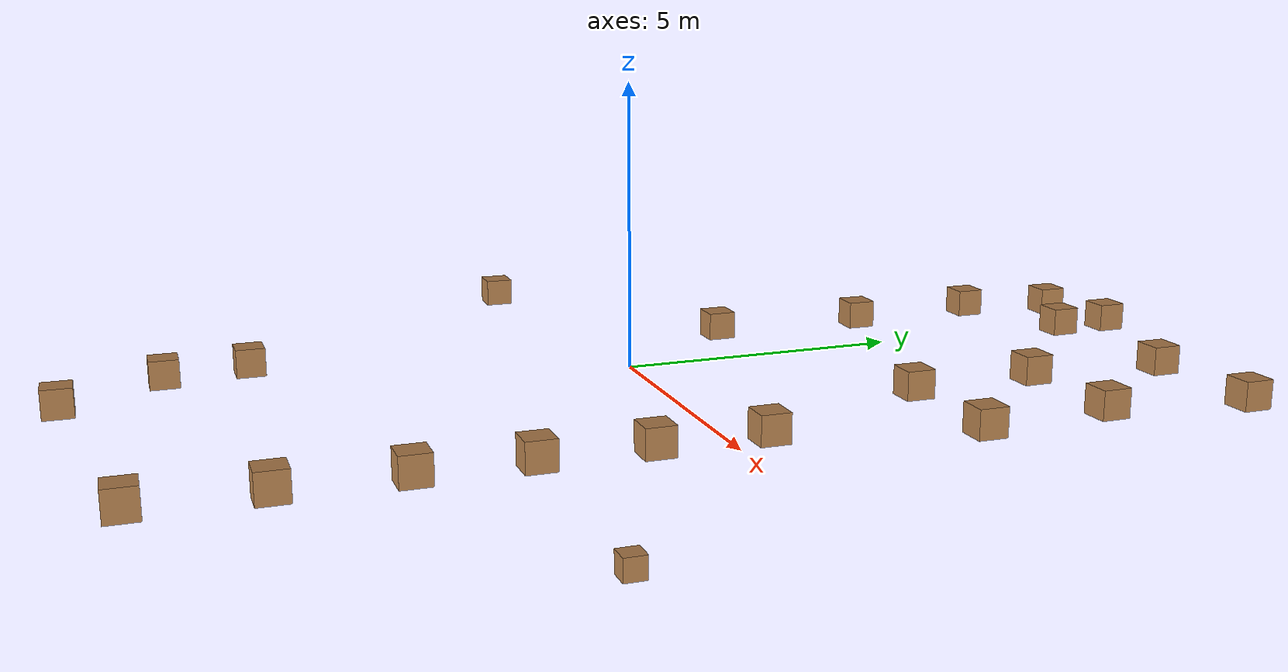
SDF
<sdf version="1.8">
 <world name="default">
  <frame name="map"/>
  <gravity>0 0 -9.8</gravity>
  <physics default="0" name="default_physics" type="ode">
   <max_step_size>0.001</max_step_size>
   <real_time_factor>1</real_time_factor>
   <real_time_update_rate>1000</real_time_update_rate>
  </physics>
  <model name="obs_01">
   <pose>-5.795143 -0.956635 0.25 0 0 0</pose>
   <static>true</static>
   <link name="link">
    <collision name="c"><geometry><box><size>0.5 0.5 0.5</size></box></geometry></collision>
    <visual name="v">
     <geometry><box><size>0.5 0.5 0.5</size></box></geometry>
     <material><ambient>0.7 0.5 0.3 1</ambient><diffuse>0.7 0.5 0.3 1</diffuse></material>
    </visual>
   </link>
  </model>
  <model name="obs_02">
   <pose>4.73156 0.57943 0.25 0 0 0</pose>
   <static>true</static>
   <link name="link">
    <collision name="c"><geometry><box><size>0.5 0.5 0.5</size></box></geometry></collision>
    <visual name="v">
     <geometry><box><size>0.5 0.5 0.5</size></box></geometry>
     <material><ambient>0.7 0.5 0.3 1</ambient><diffuse>0.7 0.5 0.3 1</diffuse></material>
    </visual>
   </link>
  </model>
  <model name="obs_03">
   <pose>4.73156 -4.827049 0.25 0 0 0</pose>
   <static>true</static>
   <link name="link">
    <collision name="c"><geometry><box><size>0.5 0.5 0.5</size></box></geometry></collision>
    <visual name="v">
     <geometry><box><size>0.5 0.5 0.5</size></box></geometry>
     <material><ambient>0.7 0.5 0.3 1</ambient><diffuse>0.7 0.5 0.3 1</diffuse></material>
    </visual>
   </link>
  </model>
  <model name="obs_04">
   <pose>4.73156 -8.6651 0.25 0 0 0</pose>
   <static>true</static>
   <link name="link">
    <collision name="c"><geometry><box><size>0.5 0.5 0.5</size></box></geometry></collision>
    <visual name="v">
     <geometry><box><size>0.5 0.5 0.5</size></box></geometry>
     <material><ambient>0.7 0.5 0.3 1</ambient><diffuse>0.7 0.5 0.3 1</diffuse></material>
    </visual>
   </link>
  </model>
  <model name="obs_05">
   <pose>4.73156 -1.242668 0.25 0 0 0</pose>
   <static>true</static>
   <link name="link">
    <collision name="c"><geometry><box><size>0.5 0.5 0.5</size></box></geometry></collision>
    <visual name="v">
     <geometry><box><size>0.5 0.5 0.5</size></box></geometry>
     <material><ambient>0.7 0.5 0.3 1</ambient><diffuse>0.7 0.5 0.3 1</diffuse></material>
    </visual>
   </link>
  </model>
  <model name="obs_06">
   <pose>4.73156 -3.038551 0.25 0 0 0</pose>
   <static>true</static>
   <link name="link">
    <collision name="c"><geometry><box><size>0.5 0.5 0.5</size></box></geometry></collision>
    <visual name="v">
     <geometry><box><size>0.5 0.5 0.5</size></box></geometry>
     <material><ambient>0.7 0.5 0.3 1</ambient><diffuse>0.7 0.5 0.3 1</diffuse></material>
    </visual>
   </link>
  </model>
  <model name="obs_07">
   <pose>4.73156 -6.750542 0.25 0 0 0</pose>
   <static>true</static>
   <link name="link">
    <collision name="c"><geometry><box><size>0.5 0.5 0.5</size></box></geometry></collision>
    <visual name="v">
     <geometry><box><size>0.5 0.5 0.5</size></box></geometry>
     <material><ambient>0.7 0.5 0.3 1</ambient><diffuse>0.7 0.5 0.3 1</diffuse></material>
    </visual>
   </link>
  </model>
  <model name="obs_08">
   <pose>0 0 -3.75 0 0 0</pose>
   <static>true</static>
   <link name="link">
    <collision name="c"><geometry><box><size>0.5 0.5 0.5</size></box></geometry></collision>
    <visual name="v">
     <geometry><box><size>0.5 0.5 0.5</size></box></geometry>
     <material><ambient>0.7 0.5 0.3 1</ambient><diffuse>0.7 0.5 0.3 1</diffuse></material>
    </visual>
   </link>
  </model>
  <model name="obs_09">
   <pose>0.433449 9.631706 0.25 0 0 -1.563161</pose>
   <static>true</static>
   <link name="link">
    <collision name="c"><geometry><box><size>0.5 0.5 0.5</size></box></geometry></collision>
    <visual name="v">
     <geometry><box><size>0.5 0.5 0.5</size></box></geometry>
     <material><ambient>0.7 0.5 0.3 1</ambient><diffuse>0.7 0.5 0.3 1</diffuse></material>
    </visual>
   </link>
  </model>
  <model name="obs_10">
   <pose>-1.8321 -6.3752 0.25 0 0 -1.563161</pose>
   <static>true</static>
   <link name="link">
    <collision name="c"><geometry><box><size>0.5 0.5 0.5</size></box></geometry></collision>
    <visual name="v">
     <geometry><box><size>0.5 0.5 0.5</size></box></geometry>
     <material><ambient>0.7 0.5 0.3 1</ambient><diffuse>0.7 0.5 0.3 1</diffuse></material>
    </visual>
   </link>
  </model>
  <model name="obs_11">
   <pose>0.433449 8.59 0.25 0 0 -1.563161</pose>
   <static>true</static>
   <link name="link">
    <collision name="c"><geometry><box><size>0.5 0.5 0.5</size></box></geometry></collision>
    <visual name="v">
     <geometry><box><size>0.5 0.5 0.5</size></box></geometry>
     <material><ambient>0.7 0.5 0.3 1</ambient><diffuse>0.7 0.5 0.3 1</diffuse></material>
    </visual>
   </link>
  </model>
  <model name="obs_12">
   <pose>5.708138 8.616844 0.232523 0 0 0</pose>
   <static>true</static>
   <link name="link">
    <collision name="c"><geometry><box><size>0.5 0.5 0.5</size></box></geometry></collision>
    <visual name="v">
     <geometry><box><size>0.5 0.5 0.5</size></box></geometry>
     <material><ambient>0.7 0.5 0.3 1</ambient><diffuse>0.7 0.5 0.3 1</diffuse></material>
    </visual>
   </link>
  </model>
  <model name="obs_13">
   <pose>3.408638 8.616844 0.232523 0 0 0</pose>
   <static>true</static>
   <link name="link">
    <collision name="c"><geometry><box><size>0.5 0.5 0.5</size></box></geometry></collision>
    <visual name="v">
     <geometry><box><size>0.5 0.5 0.5</size></box></geometry>
     <material><ambient>0.7 0.5 0.3 1</ambient><diffuse>0.7 0.5 0.3 1</diffuse></material>
    </visual>
   </link>
  </model>
  <model name="obs_14">
   <pose>-1.491287 5.222435 0.232523 0 0 -1.583185</pose>
   <static>true</static>
   <link name="link">
    <collision name="c"><geometry><box><size>0.5 0.5 0.5</size></box></geometry></collision>
    <visual name="v">
     <geometry><box><size>0.5 0.5 0.5</size></box></geometry>
     <material><ambient>0.7 0.5 0.3 1</ambient><diffuse>0.7 0.5 0.3 1</diffuse></material>
    </visual>
   </link>
  </model>
  <model name="obs_15">
   <pose>3.324959 3.822449 0.237936 0 0 1.563871</pose>
   <static>true</static>
   <link name="link">
    <collision name="c"><geometry><box><size>0.5 0.5 0.5</size></box></geometry></collision>
    <visual name="v">
     <geometry><box><size>0.5 0.5 0.5</size></box></geometry>
     <material><ambient>0.7 0.5 0.3 1</ambient><diffuse>0.7 0.5 0.3 1</diffuse></material>
    </visual>
   </link>
  </model>
  <model name="obs_16">
   <pose>5.54171 3.816475 0.234337 0 0 -1.583191</pose>
   <static>true</static>
   <link name="link">
    <collision name="c"><geometry><box><size>0.5 0.5 0.5</size></box></geometry></collision>
    <visual name="v">
     <geometry><box><size>0.5 0.5 0.5</size></box></geometry>
     <material><ambient>0.7 0.5 0.3 1</ambient><diffuse>0.7 0.5 0.3 1</diffuse></material>
    </visual>
   </link>
  </model>
  <model name="obs_17">
   <pose>5.384239 6.137154 0.25 0 0 3.150000</pose>
   <static>true</static>
   <link name="link">
    <collision name="c"><geometry><box><size>0.5 0.5 0.5</size></box></geometry></collision>
    <visual name="v">
     <geometry><box><size>0.5 0.5 0.5</size></box></geometry>
     <material><ambient>0.7 0.5 0.3 1</ambient><diffuse>0.7 0.5 0.3 1</diffuse></material>
    </visual>
   </link>
  </model>
  <model name="obs_18">
   <pose>3.236 6.137154 0.25 0 0 3.150000</pose>
   <static>true</static>
   <link name="link">
    <collision name="c"><geometry><box><size>0.5 0.5 0.5</size></box></geometry></collision>
    <visual name="v">
     <geometry><box><size>0.5 0.5 0.5</size></box></geometry>
     <material><ambient>0.7 0.5 0.3 1</ambient><diffuse>0.7 0.5 0.3 1</diffuse></material>
    </visual>
   </link>
  </model>
  <model name="obs_19">
   <pose>-1.573677 2.301994 0.234337 0 0 -3.133191</pose>
   <static>true</static>
   <link name="link">
    <collision name="c"><geometry><box><size>0.5 0.5 0.5</size></box></geometry></collision>
    <visual name="v">
     <geometry><box><size>0.5 0.5 0.5</size></box></geometry>
     <material><ambient>0.7 0.5 0.3 1</ambient><diffuse>0.7 0.5 0.3 1</diffuse></material>
    </visual>
   </link>
  </model>
  <model name="obs_20">
   <pose>-1.2196 9.407 0.234337 0 0 1.563871</pose>
   <static>true</static>
   <link name="link">
    <collision name="c"><geometry><box><size>0.5 0.5 0.5</size></box></geometry></collision>
    <visual name="v">
     <geometry><box><size>0.5 0.5 0.5</size></box></geometry>
     <material><ambient>0.7 0.5 0.3 1</ambient><diffuse>0.7 0.5 0.3 1</diffuse></material>
    </visual>
   </link>
  </model>
  <model name="obs_21">
   <pose>-1.634682 -7.811813 0.230441 0 0 0</pose>
   <static>true</static>
   <link name="link">
    <collision name="c"><geometry><box><size>0.5 0.5 0.5</size></box></geometry></collision>
    <visual name="v">
     <geometry><box><size>0.5 0.5 0.5</size></box></geometry>
     <material><ambient>0.7 0.5 0.3 1</ambient><diffuse>0.7 0.5 0.3 1</diffuse></material>
    </visual>
   </link>
  </model>
  <model name="obs_22">
   <pose>-1.592441 7.715420 0.25 0 0 0</pose>
   <static>true</static>
   <link name="link">
    <collision name="c"><geometry><box><size>0.5 0.5 0.5</size></box></geometry></collision>
    <visual name="v">
     <geometry><box><size>0.5 0.5 0.5</size></box></geometry>
     <material><ambient>0.7 0.5 0.3 1</ambient><diffuse>0.7 0.5 0.3 1</diffuse></material>
    </visual>
   </link>
  </model>
  <model name="obs_23">
   <pose>-0.276098 -9.481944 0.273266 0 0 0</pose>
   <static>true</static>
   <link name="link">
    <collision name="c"><geometry><box><size>0.5 0.5 0.5</size></box></geometry></collision>
    <visual name="v">
     <geometry><box><size>0.5 0.5 0.5</size></box></geometry>
     <material><ambient>0.7 0.5 0.3 1</ambient><diffuse>0.7 0.5 0.3 1</diffuse></material>
    </visual>
   </link>
  </model>
  <light name="Warehouse_CeilingLight_003" type="point">
   <pose>0 0 8.5 0 0 0</pose>
   <diffuse>0.5 0.5 0.5 1</diffuse>
   <specular>0.2 0.2 0.2 1</specular>
   <attenuation>
    <range>80</range>
    <constant>0.3</constant>
    <linear>0.01</linear>
    <quadratic>0.001</quadratic>
   </attenuation>
   <direction>0.1 0.1 -1</direction>
  </light>
 </world>
</sdf>
